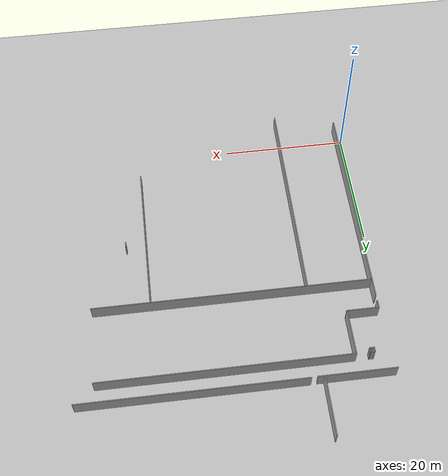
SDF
<sdf version="1.6">
 <world name="default">
  <model name="ground_plane">
   <static>1</static>
   <link name="link">
    <collision name="collision">
     <geometry><plane><normal>0 0 1</normal><size>300 300</size></plane></geometry>
     <surface>
      <contact><collide_bitmask>65535</collide_bitmask></contact>
      <friction><ode><mu>100</mu><mu2>50</mu2></ode></friction>
     </surface>
    </collision>
    <visual name="visual">
     <cast_shadows>0</cast_shadows>
     <geometry><plane><normal>0 0 1</normal><size>300 300</size></plane></geometry>
     <material>
      <script><uri>file://media/materials/scripts/gazebo.material</uri><name>Gazebo/Grey</name></script>
     </material>
    </visual>
   </link>
  </model>
  <model name="NIK">
   <pose>-0.005548 -3.7937 0 0 -0 0</pose>
   <link name="Wall_103">
    <collision name="Wall_103_Collision">
     <geometry><box><size>38.25 0.15 2.5</size></box></geometry>
     <pose>0 0 1.25 0 -0 0</pose>
    </collision>
    <visual name="Wall_103_Visual">
     <pose>0 0 1.25 0 -0 0</pose>
     <geometry><box><size>38.25 0.15 2.5</size></box></geometry>
     <material>
      <script><uri>file://media/materials/scripts/gazebo.material</uri><name>Gazebo/Grey</name></script>
      <ambient>1 1 1 1</ambient>
     </material>
     <meta><layer>0</layer></meta>
    </visual>
    <pose>24.9325 45.1789 0 0 -0 3.14159</pose>
   </link>
   <link name="Wall_104">
    <collision name="Wall_104_Collision">
     <geometry><box><size>7.25 0.15 2.5</size></box></geometry>
     <pose>0 0 1.25 0 -0 0</pose>
    </collision>
    <visual name="Wall_104_Visual">
     <pose>0 0 1.25 0 -0 0</pose>
     <geometry><box><size>7.25 0.15 2.5</size></box></geometry>
     <material>
      <script><uri>file://media/materials/scripts/gazebo.material</uri><name>Gazebo/Grey</name></script>
      <ambient>1 1 1 1</ambient>
     </material>
     <meta><layer>0</layer></meta>
    </visual>
    <pose>5.88252 41.6289 0 0 -0 -1.5708</pose>
   </link>
   <link name="Wall_105">
    <collision name="Wall_105_Collision">
     <geometry><box><size>5 0.15 2.5</size></box></geometry>
     <pose>0 0 1.25 0 -0 0</pose>
    </collision>
    <visual name="Wall_105_Visual">
     <pose>0 0 1.25 0 -0 0</pose>
     <geometry><box><size>5 0.15 2.5</size></box></geometry>
     <material>
      <script><uri>file://media/materials/scripts/gazebo.material</uri><name>Gazebo/Grey</name></script>
      <ambient>1 1 1 1</ambient>
     </material>
     <meta><layer>0</layer></meta>
    </visual>
    <pose>3.45752 38.0789 0 0 -0 3.14159</pose>
   </link>
   <link name="Wall_107">
    <collision name="Wall_107_Collision">
     <geometry><box><size>43 0.15 2.5</size></box></geometry>
     <pose>0 0 1.25 0 -0 0</pose>
    </collision>
    <visual name="Wall_107_Visual">
     <pose>0 0 1.25 0 -0 0</pose>
     <geometry><box><size>43 0.15 2.5</size></box></geometry>
     <material>
      <script><uri>file://media/materials/scripts/gazebo.material</uri><name>Gazebo/Grey</name></script>
      <ambient>1 1 1 1</ambient>
     </material>
     <meta><layer>0</layer></meta>
    </visual>
    <pose>22.4661 33.102 0 0 -0 0</pose>
   </link>
   <link name="Wall_111">
    <collision name="Wall_111_Collision">
     <geometry><box><size>34.25 0.15 2.5</size></box></geometry>
     <pose>0 0 1.25 0 -0 0</pose>
    </collision>
    <visual name="Wall_111_Visual">
     <pose>0 0 1.25 0 -0 0</pose>
     <geometry><box><size>34.25 0.15 2.5</size></box></geometry>
     <material>
      <script><uri>file://media/materials/scripts/gazebo.material</uri><name>Gazebo/Grey</name></script>
      <ambient>1 1 1 1</ambient>
     </material>
     <meta><layer>0</layer></meta>
    </visual>
    <pose>11.0372 15.9864 0 0 -0 -1.5708</pose>
   </link>
   <link name="Wall_113">
    <collision name="Wall_113_Collision">
     <geometry><box><size>24.25 0.15 2.5</size></box></geometry>
     <pose>0 0 1.25 0 -0 0</pose>
    </collision>
    <visual name="Wall_113_Visual">
     <pose>0 0 1.25 0 -0 0</pose>
     <geometry><box><size>24.25 0.15 2.5</size></box></geometry>
     <material>
      <script><uri>file://media/materials/scripts/gazebo.material</uri><name>Gazebo/Grey</name></script>
      <ambient>1 1 1 1</ambient>
     </material>
     <meta><layer>0</layer></meta>
    </visual>
    <pose>35.0192 21.0101 0 0 -0 -1.5708</pose>
   </link>
   <link name="Wall_479">
    <collision name="Wall_479_Collision">
     <geometry><box><size>0.75 0.15 2.5</size></box></geometry>
     <pose>0 0 1.25 0 -0 0</pose>
    </collision>
    <visual name="Wall_479_Visual">
     <pose>0 0 1.25 0 -0 0</pose>
     <geometry><box><size>0.75 0.15 2.5</size></box></geometry>
     <material>
      <script><uri>file://media/materials/scripts/gazebo.material</uri><name>Gazebo/Grey</name></script>
      <ambient>1 1 1 1</ambient>
     </material>
     <meta><layer>0</layer></meta>
    </visual>
    <pose>3.75952 44.8416 0 0 -0 -1.5708</pose>
   </link>
   <link name="Wall_480">
    <collision name="Wall_480_Collision">
     <geometry><box><size>0.75 0.15 2.5</size></box></geometry>
     <pose>0 0 1.25 0 -0 0</pose>
    </collision>
    <visual name="Wall_480_Visual">
     <pose>0 0 1.25 0 -0 0</pose>
     <geometry><box><size>0.75 0.15 2.5</size></box></geometry>
     <material>
      <script><uri>file://media/materials/scripts/gazebo.material</uri><name>Gazebo/Grey</name></script>
      <ambient>1 1 1 1</ambient>
     </material>
     <meta><layer>0</layer></meta>
    </visual>
    <pose>3.45952 44.5416 0 0 -0 3.14159</pose>
   </link>
   <link name="Wall_481">
    <collision name="Wall_481_Collision">
     <geometry><box><size>0.75 0.15 2.5</size></box></geometry>
     <pose>0 0 1.25 0 -0 0</pose>
    </collision>
    <visual name="Wall_481_Visual">
     <pose>0 0 1.25 0 -0 0</pose>
     <geometry><box><size>0.75 0.15 2.5</size></box></geometry>
     <material>
      <script><uri>file://media/materials/scripts/gazebo.material</uri><name>Gazebo/Grey</name></script>
      <ambient>1 1 1 1</ambient>
     </material>
     <meta><layer>0</layer></meta>
    </visual>
    <pose>3.15952 44.8416 0 0 -0 1.5708</pose>
   </link>
   <link name="Wall_482">
    <collision name="Wall_482_Collision">
     <geometry><box><size>0.75 0.15 2.5</size></box></geometry>
     <pose>0 0 1.25 0 -0 0</pose>
    </collision>
    <visual name="Wall_482_Visual">
     <pose>0 0 1.25 0 -0 0</pose>
     <geometry><box><size>0.75 0.15 2.5</size></box></geometry>
     <material>
      <script><uri>file://media/materials/scripts/gazebo.material</uri><name>Gazebo/Grey</name></script>
      <ambient>1 1 1 1</ambient>
     </material>
     <meta><layer>0</layer></meta>
    </visual>
    <pose>3.45952 45.1416 0 0 -0 0</pose>
   </link>
   <link name="Wall_514">
    <collision name="Wall_514_Collision">
     <geometry><box><size>0.75 0.15 2.5</size></box></geometry>
     <pose>0 0 1.25 0 -0 0</pose>
    </collision>
    <visual name="Wall_514_Visual">
     <pose>0 0 1.25 0 -0 0</pose>
     <geometry><box><size>0.75 0.15 2.5</size></box></geometry>
     <material>
      <script><uri>file://media/materials/scripts/gazebo.material</uri><name>Gazebo/Grey</name></script>
      <ambient>1 1 1 1</ambient>
     </material>
     <meta><layer>0</layer></meta>
    </visual>
    <pose>38.1692 22.0914 0 0 -0 -1.5708</pose>
   </link>
   <link name="Wall_557">
    <collision name="Wall_557_Collision">
     <geometry><box><size>1.25 0.15 2.5</size></box></geometry>
     <pose>0 0 1.25 0 -0 0</pose>
    </collision>
    <visual name="Wall_557_Visual">
     <pose>0 0 1.25 0 -0 0</pose>
     <geometry><box><size>1.25 0.15 2.5</size></box></geometry>
     <material>
      <script><uri>file://media/materials/scripts/gazebo.material</uri><name>Gazebo/Grey</name></script>
      <ambient>1 1 1 1</ambient>
     </material>
     <meta><layer>0</layer></meta>
    </visual>
    <pose>1.03252 37.5289 0 0 -0 -1.5708</pose>
   </link>
   <link name="Wall_559">
    <collision name="Wall_559_Collision">
     <geometry><box><size>3 0.15 2.5</size></box></geometry>
     <pose>0 0 1.25 0 -0 0</pose>
    </collision>
    <visual name="Wall_559_Visual">
     <pose>0 0 1.25 0 -0 0</pose>
     <geometry><box><size>3 0.15 2.5</size></box></geometry>
     <material>
      <script><uri>file://media/materials/scripts/gazebo.material</uri><name>Gazebo/Grey</name></script>
      <ambient>1 1 1 1</ambient>
     </material>
     <meta><layer>0</layer></meta>
    </visual>
    <pose>1.04107 34.527 0 0 -0 1.5708</pose>
   </link>
   <link name="Wall_561">
    <collision name="Wall_561_Collision">
     <geometry><box><size>32 0.15 2.5</size></box></geometry>
     <pose>0 0 1.25 0 -0 0</pose>
    </collision>
    <visual name="Wall_561_Visual">
     <pose>0 0 1.25 0 -0 0</pose>
     <geometry><box><size>32 0.15 2.5</size></box></geometry>
     <material>
      <script><uri>file://media/materials/scripts/gazebo.material</uri><name>Gazebo/Grey</name></script>
      <ambient>1 1 1 1</ambient>
     </material>
     <meta><layer>0</layer></meta>
    </visual>
    <pose>1.04107 17.177 0 0 -0 -1.5708</pose>
   </link>
   <link name="Wall_569">
    <collision name="Wall_569_Collision">
     <geometry><box><size>34 0.15 2.5</size></box></geometry>
     <pose>0 0 1.25 0 -0 0</pose>
    </collision>
    <visual name="Wall_569_Visual">
     <pose>0 0 1.25 0 -0 0</pose>
     <geometry><box><size>34 0.15 2.5</size></box></geometry>
     <material>
      <script><uri>file://media/materials/scripts/gazebo.material</uri><name>Gazebo/Grey</name></script>
      <ambient>1 1 1 1</ambient>
     </material>
     <meta><layer>0</layer></meta>
    </visual>
    <pose>29.9563 48.1212 0 0 -0 3.14159</pose>
   </link>
   <link name="Wall_571">
    <collision name="Wall_571_Collision">
     <geometry><box><size>11.75 0.15 2.5</size></box></geometry>
     <pose>0 0 1.25 0 -0 0</pose>
    </collision>
    <visual name="Wall_571_Visual">
     <pose>0 0 1.25 0 -0 0</pose>
     <geometry><box><size>11.75 0.15 2.5</size></box></geometry>
     <material>
      <script><uri>file://media/materials/scripts/gazebo.material</uri><name>Gazebo/Grey</name></script>
      <ambient>1 1 1 1</ambient>
     </material>
     <meta><layer>0</layer></meta>
    </visual>
    <pose>6.22344 48.0725 0 0 -0 3.14159</pose>
   </link>
   <link name="Wall_62">
    <collision name="Wall_62_Collision">
     <geometry><box><size>9 0.15 2.5</size></box></geometry>
     <pose>0 0 1.25 0 -0 0</pose>
    </collision>
    <visual name="Wall_62_Visual">
     <pose>0 0 1.25 0 -0 0</pose>
     <geometry><box><size>9 0.15 2.5</size></box></geometry>
     <material>
      <script><uri>file://media/materials/scripts/gazebo.material</uri><name>Gazebo/Grey</name></script>
      <ambient>1 1 1 1</ambient>
     </material>
     <meta><layer>0</layer></meta>
    </visual>
    <pose>10.999 52.5538 0 0 -0 1.5708</pose>
   </link>
   <static>1</static>
  </model>
 </world>
</sdf>
